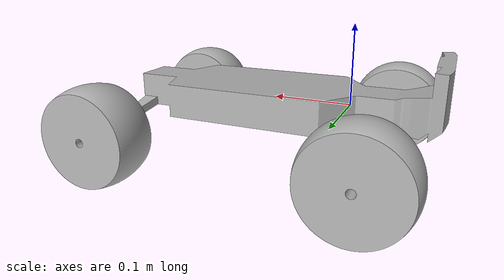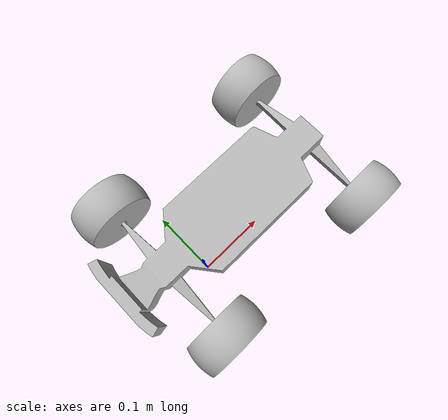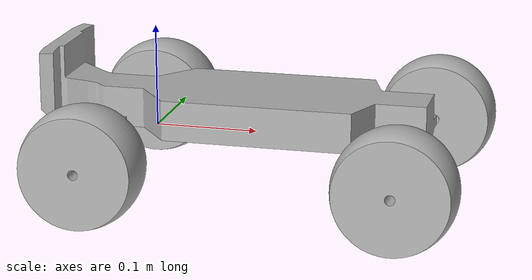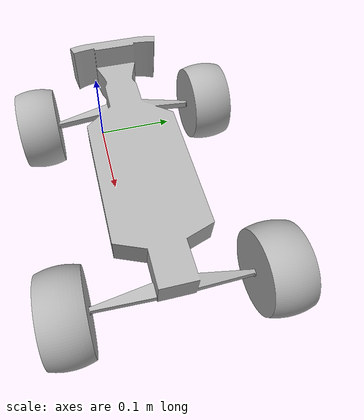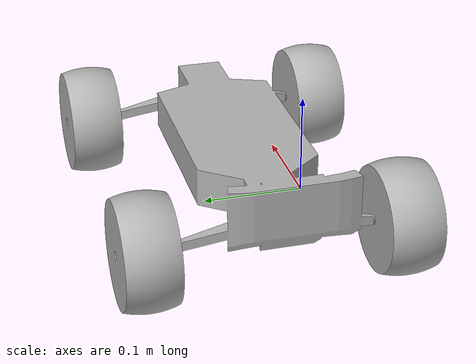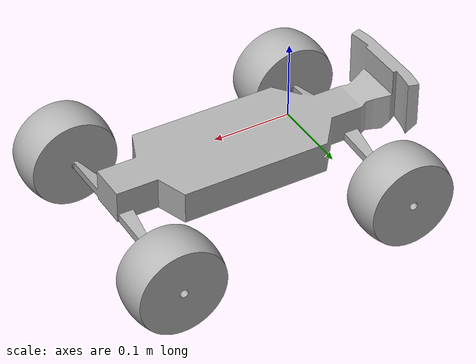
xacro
<?xml version="1.0"?>
<robot xmlns:xacro="http://www.ros.org/wiki/xacro" name="Assembly">

	<material name="silver">
		<color rgba="0.700 0.700 0.700 1.000" />
	</material>

	<xacro:include filename="colours.xacro" />
	<xacro:include filename="gazebo_control.xacro" />

	<link name="world"></link>

	<joint name="base_joint" type="fixed">
		<origin xyz="0 0 0.0" rpy="0 0 0" />
		<parent link="world" />
		<child link="base_link" />
	</joint>

	<!-- Base link -->

	<link name="base_link">
		<inertial>
			<origin xyz="0.07534510435136411 0.041236994202469936 0.012233421118945254" rpy="0 0 0" />
			<mass value="1.509259717395697" />
			<inertia ixx="0.002025413200436247" iyy="0.01575536948738211" izz="0.017115842947411287"
				ixy="9.190668177905433e-06" iyz="-1.321879237211991e-07" ixz="0.0006849511383840069" />
		</inertial>
		<visual>
			<origin xyz="0 0 0" rpy="0 0 0" />
			<geometry>
				<mesh filename="file://$(find my_robot)/urdf/meshes/base_link.stl"
					scale="0.001 0.001 0.001" />
			</geometry>
			<material name="silver" />
			<material />
		</visual>
		<collision>
			<origin xyz="0 0 0" rpy="0 0 0" />
			<geometry>
				<mesh filename="file://$(find my_robot)/urdf/meshes/base_link.stl"
					scale="0.001 0.001 0.001" />
			</geometry>
		</collision>
	</link>

	<gazebo reference="base_link">
        <material>Gazebo/Orange</material>
    </gazebo>

	<!-- Front left -->
	<link name="Wheel31">
		<inertial>
			<origin xyz="2.419116294227752e-07 -0.02749965116389138 -2.5590366655586783e-08"
				rpy="0 0 0" />
			<mass value="0.5775672191550701" />
			<inertia ixx="0.0006304923225381167" iyy="0.0009817859201656635"
				izz="0.0006304923225309142" ixy="8.673617379884035e-19" iyz="-3.469446951953614e-18"
				ixz="-2.0599841277224584e-18" />
		</inertial>
		<visual>
			<origin xyz="0.047313 0.062217 0.019156" rpy="0 0 0" />
			<geometry>
				<mesh filename="file://$(find my_robot)/urdf/meshes/Wheel31.stl"
					scale="0.001 0.001 0.001" />
			</geometry>
			<material name="silver" />
			<material />
		</visual>
		<collision>
			<origin xyz="0.047313 0.062217 0.019156" rpy="0 0 0" />
			<geometry>
				<mesh filename="file://$(find my_robot)/urdf/meshes/Wheel31.stl"
					scale="0.001 0.001 0.001" />
			</geometry>
		</collision>
	</link>

	<joint name="Front_left" type="continuous">
		<origin xyz="-0.047313 -0.062217 -0.019156" rpy="0 0 0" />
		<parent link="base_link" />
		<child link="Wheel31" />
		<axis xyz="-0.0 1.0 0.0" />
	</joint>

	<transmission name="Front_left_tran">
		<type>transmission_interface/SimpleTransmission</type>
		<joint name="Front_left">
			<hardwareInterface>PositionJointInterface</hardwareInterface>
		</joint>
		<actuator name="Front_left_actr">
			<hardwareInterface>PositionJointInterface</hardwareInterface>
			<mechanicalReduction>1</mechanicalReduction>
		</actuator>
	</transmission>

	<gazebo reference="Wheel31">
        <material>Gazebo/Red</material>
    </gazebo>

	<!-- Back left -->
	<link name="Wheel41">
		<inertial>
			<origin xyz="2.4191162950604195e-07 -0.027499651163891366 -2.55903664647672e-08"
				rpy="0 0 0" />
			<mass value="0.5775672191550701" />
			<inertia ixx="0.0006304923225381081" iyy="0.0009817859201656579"
				izz="0.0006304923225308179" ixy="-1.5612511283791264e-17"
				iyz="-4.336808689942018e-19" ixz="8.673617379884035e-19" />
		</inertial>
		<visual>
			<origin xyz="-0.252687 0.062217 0.019156" rpy="0 0 0" />
			<geometry>
				<mesh filename="file://$(find my_robot)/urdf/meshes/Wheel41.stl"
					scale="0.001 0.001 0.001" />
			</geometry>
			<material name="silver" />
			<material />
		</visual>
		<collision>
			<origin xyz="-0.252687 0.062217 0.019156" rpy="0 0 0" />
			<geometry>
				<mesh filename="file://$(find my_robot)/urdf/meshes/Wheel41.stl"
					scale="0.001 0.001 0.001" />
			</geometry>
		</collision>
	</link>

	<joint name="Rear_left" type="continuous">
		<origin xyz="0.252687 -0.062217 -0.019156" rpy="0 0 0" />
		<parent link="base_link" />
		<child link="Wheel41" />
		<axis xyz="-0.0 1.0 0.0" />
	</joint>

	<transmission name="Rear_left_tran">
		<type>transmission_interface/SimpleTransmission</type>
		<joint name="Rear_left">
			<hardwareInterface>PositionJointInterface</hardwareInterface>
		</joint>
		<actuator name="Rear_left_actr">
			<hardwareInterface>PositionJointInterface</hardwareInterface>
			<mechanicalReduction>1</mechanicalReduction>
		</actuator>
	</transmission>

	<gazebo reference="Wheel41">
        <material>Gazebo/Red</material>
    </gazebo>

	<!-- Back right -->
	<link name="Wheel21">
		<inertial>
			<origin xyz="2.419116293395085e-07 0.027500348836108995 -2.559036639537826e-08"
				rpy="0 0 0" />
			<mass value="0.5775672191550697" />
			<inertia ixx="0.0006304923225379858" iyy="0.000981785920165415"
				izz="0.000630492322531026" ixy="-6.591949208711867e-17" iyz="1.0842021724855044e-17"
				ixz="8.673617379884035e-18" />
		</inertial>
		<visual>
			<origin xyz="-0.252687 -0.144783 0.019156" rpy="0 0 0" />
			<geometry>
				<mesh filename="file://$(find my_robot)/urdf/meshes/Wheel21.stl"
					scale="0.001 0.001 0.001" />
			</geometry>
			<material name="silver" />
			<material />
		</visual>
		<collision>
			<origin xyz="-0.252687 -0.144783 0.019156" rpy="0 0 0" />
			<geometry>
				<mesh filename="file://$(find my_robot)/urdf/meshes/Wheel21.stl"
					scale="0.001 0.001 0.001" />
			</geometry>
		</collision>
	</link>

	<joint name="Rear_right" type="continuous">
		<origin xyz="0.252687 0.144783 -0.019156" rpy="0 0 0" />
		<parent link="base_link" />
		<child link="Wheel21" />
		<axis xyz="0.0 -1.0 -0.0" />
	</joint>

	<transmission name="Rear_right_tran">
		<type>transmission_interface/SimpleTransmission</type>
		<joint name="Rear_right">
			<hardwareInterface>PositionJointInterface</hardwareInterface>
		</joint>
		<actuator name="Rear_right_actr">
			<hardwareInterface>PositionJointInterface</hardwareInterface>
			<mechanicalReduction>1</mechanicalReduction>
		</actuator>
	</transmission>

	<gazebo reference="Wheel21">
        <material>Gazebo/Green</material>
    </gazebo>

	<!-- Front right -->
	<link name="Wheel11">
		<inertial>
			<origin xyz="2.4191162938808075e-07 0.027500348836108718 -2.5590366593136737e-08"
				rpy="0 0 0" />
			<mass value="0.5775672191550699" />
			<inertia ixx="0.0006304923225378747" iyy="0.0009817859201654295"
				izz="0.0006304923225309185" ixy="-3.469446951953614e-18"
				iyz="4.7704895589362195e-18" ixz="1.1926223897340549e-18" />
		</inertial>
		<visual>
			<origin xyz="0.047313 -0.144783 0.019156" rpy="0 0 0" />
			<geometry>
				<mesh filename="file://$(find my_robot)/urdf/meshes/Wheel11.stl"
					scale="0.001 0.001 0.001" />
			</geometry>
			<material name="silver" />
			<material />
		</visual>
		<collision>
			<origin xyz="0.047313 -0.144783 0.019156" rpy="0 0 0" />
			<geometry>
				<mesh filename="file://$(find my_robot)/urdf/meshes/Wheel11.stl"
					scale="0.001 0.001 0.001" />
			</geometry>
		</collision>
	</link>

	<joint name="Front_right" type="continuous">
		<origin xyz="-0.047313 0.144783 -0.019156" rpy="0 0 0" />
		<parent link="base_link" />
		<child link="Wheel11" />
		<axis xyz="0.0 -1.0 -0.0" />
	</joint>

	<transmission name="Front_right_tran">
		<type>transmission_interface/SimpleTransmission</type>
		<joint name="Front_right">
			<hardwareInterface>PositionJointInterface</hardwareInterface>
		</joint>
		<actuator name="Front_right_actr">
			<hardwareInterface>PositionJointInterface</hardwareInterface>
			<mechanicalReduction>1</mechanicalReduction>
		</actuator>
	</transmission>

	<gazebo reference="Wheel11">
        <material>Gazebo/Green</material>
    </gazebo>

</robot>

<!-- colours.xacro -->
<robot xmlns:xacro="http://www.ros.org/wiki/xacro">

<!-- Some colours -->
  <material name="blue">
    <color rgba="0 0 0.8 1"/>
  </material>

  <material name="red">
    <color rgba="0.8 0 0 1"/>
  </material>

  <material name="white">
    <color rgba="1 1 1 1"/>
  </material>

</robot>
